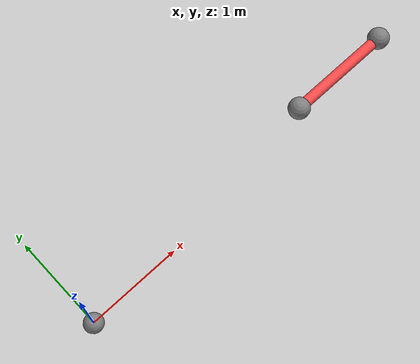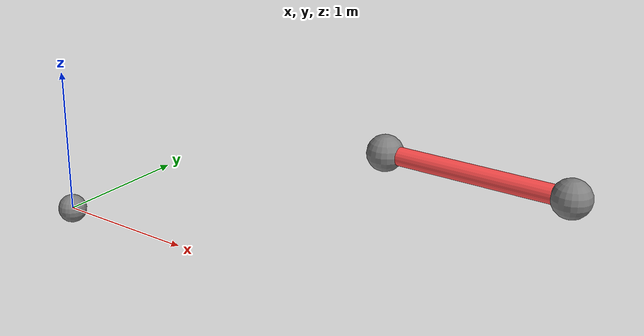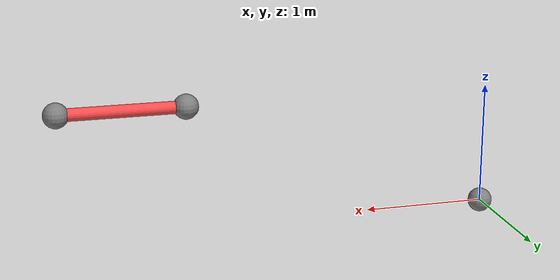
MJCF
<mujoco>
  <option gravity="0 0 -9.81" />
  <worldbody>
    <body name="object_4" pos="0 0 -10">
      <geom type="plane" size="30 30 0.1" rgba="0.8 0.8 0.8 1" />
    </body>
    <body name="object_3" pos="0 0 0">
      <geom type="sphere" size="0.1" rgba="0.5 0.5 0.5 1" />
    </body>
    <body name="object_2" pos="3 0 1">
      <geom type="capsule" fromto="-0.5 0 0 0.5 0 0" size="0.05" density="0.2" rgba="1 0.3 0.3 1" />
      <geom type="sphere" pos="-0.5 0 0" size="0.1" density="1" />
      <geom type="sphere" pos="0.5 0 0" size="0.1" density="1" />
      <joint name="object_2_joint" type="hinge" axis="0 0 1" />
    </body>
  </worldbody>
<joint name="joint_object_3_object_4" type="revolute" body1="object_3" body2="object_4" /><joint name="joint_object_1_object_3" type="revolute" body1="object_1" body2="object_3" /><joint name="joint_object_2_object_3" type="revolute" body1="object_2" body2="object_3" /></mujoco>
